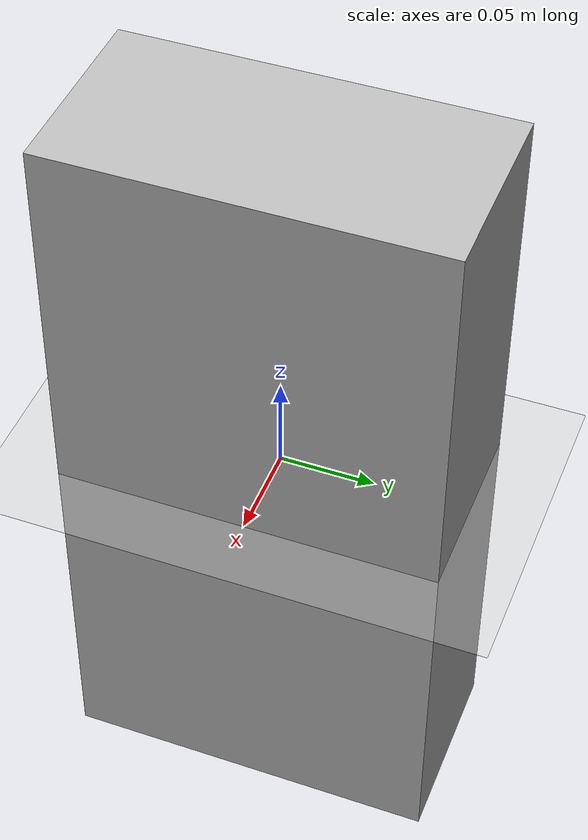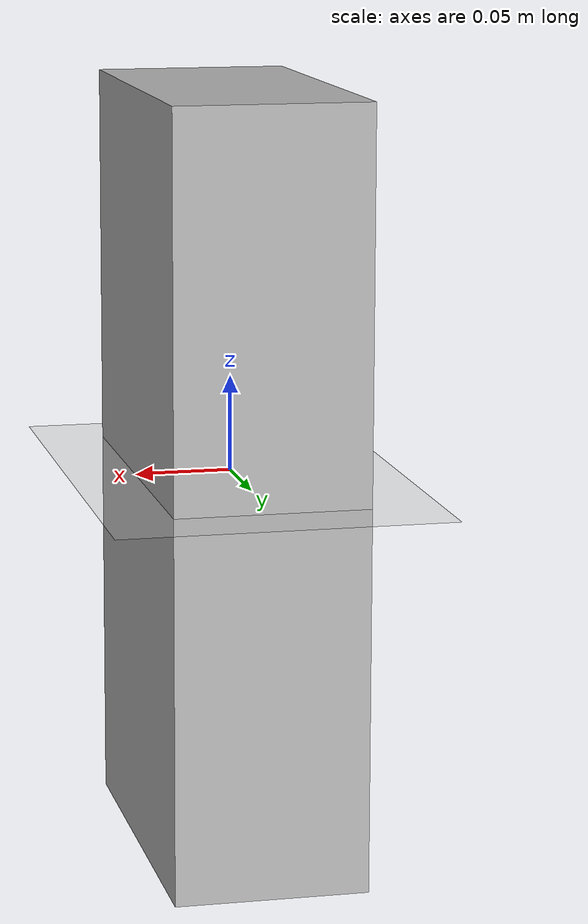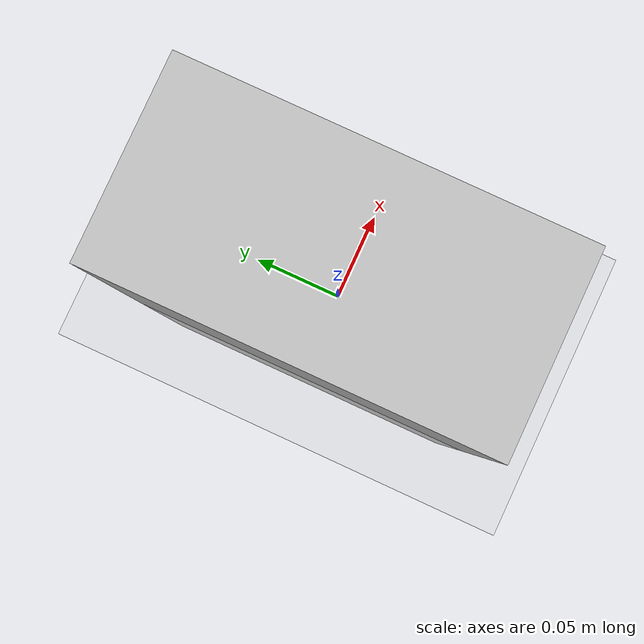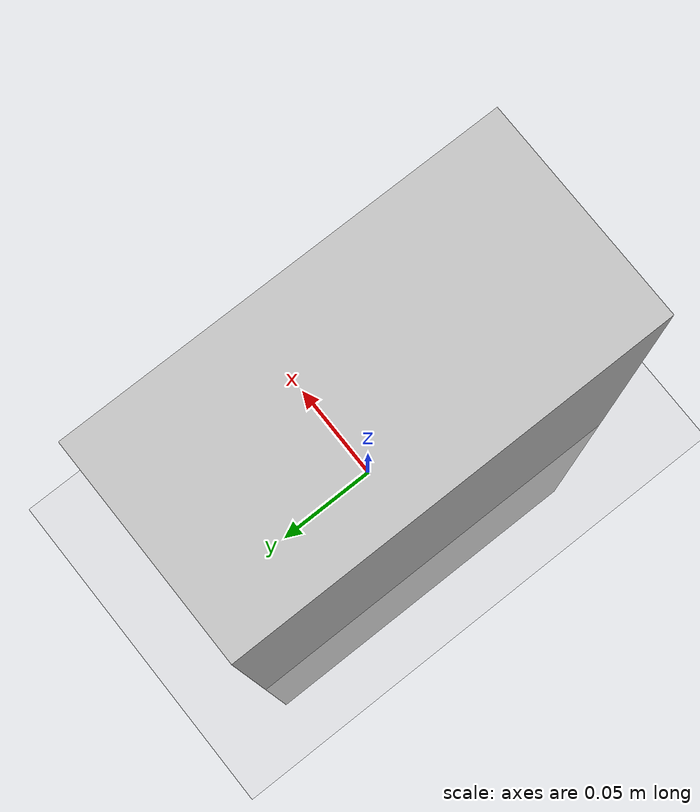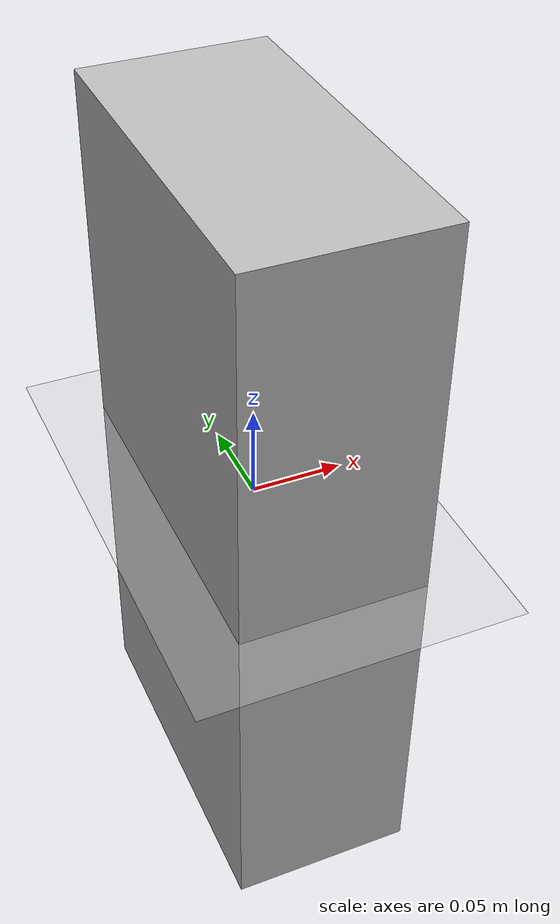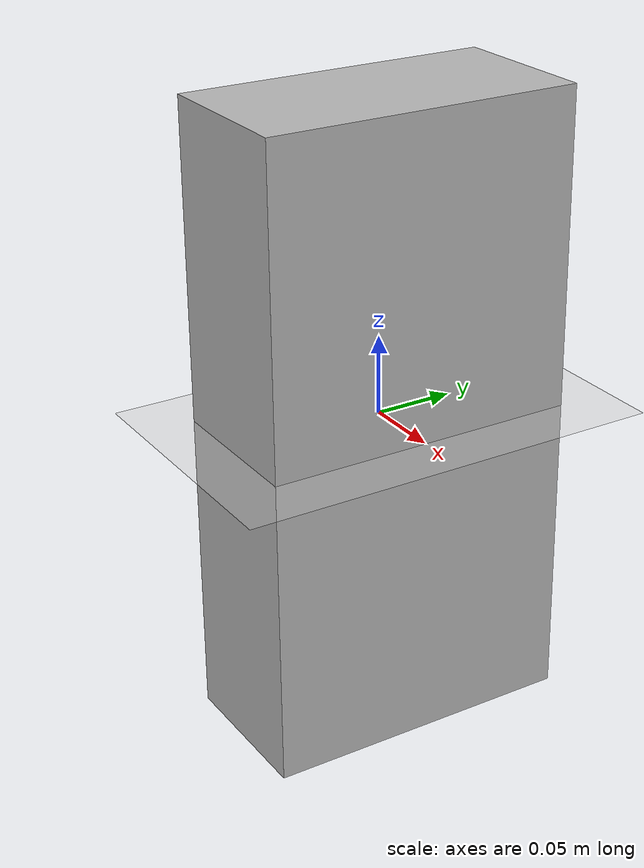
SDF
<?xml version="1.0"?>

<sdf version="1.6">
  <world name="default">
    <!--地面を導入する-->
    <include>
      <uri>model://ground_plane</uri>
    </include>
    <!--ライティングを導入する-->
    <include>
      <uri>model://sun</uri>
    </include>

    <!--ここからモノリスの記述-->
    <model name='monolith'>
      <!--位置と角度。x,y,z,roll,pitch,yaw 単位はメートルとdegree-->
      <pose>0 0 0 0 0 0</pose>

      <!--パーツの記述-->
      <link name='body'>
        <pose>0 0 0 0 0 0</pose>
        <inertial>
          <!--質量-->
          <mass>1</mass>
          <!--慣性行列（後述）-->
          <inertia>
            <ixx>0.016667</ixx>
            <ixy>0</ixy>
            <ixz>0</ixz>
            <iyy>0.014167</iyy>
            <iyz>0</iyz>
            <izz>0.004167</izz>
          </inertia>
        </inertial>

        <!--表示用の記述-->
        <visual name='visual'>
          <geometry>
            <box>
              <!--x,y,zのサイズ（メートル）-->
              <size>0.1 0.2 0.4</size>
            </box>
          </geometry>
        </visual>

        <!--衝突判定の範囲-->
        <collision name='collision'>
          <geometry>
            <box>
              <!--x,y,zのサイズ（メートル）-->
              <size>0.1 0.2 0.4</size>
            </box>
          </geometry>
        </collision>

      </link>
    </model>

  </world>
</sdf>
